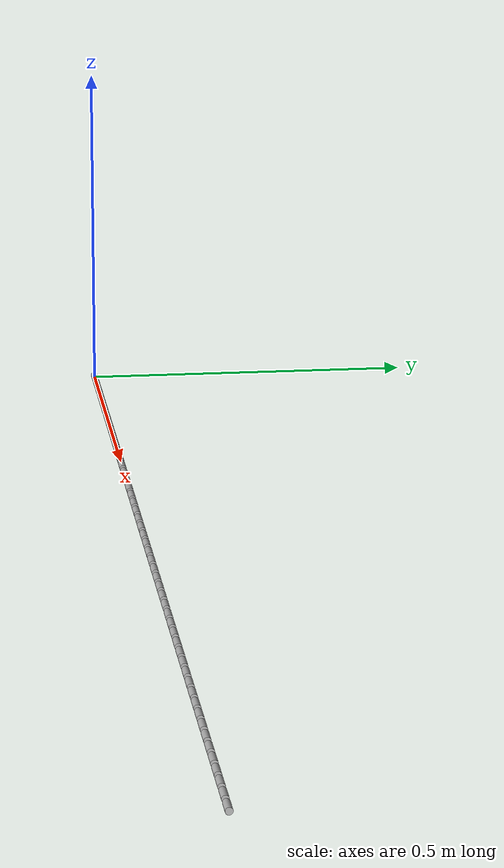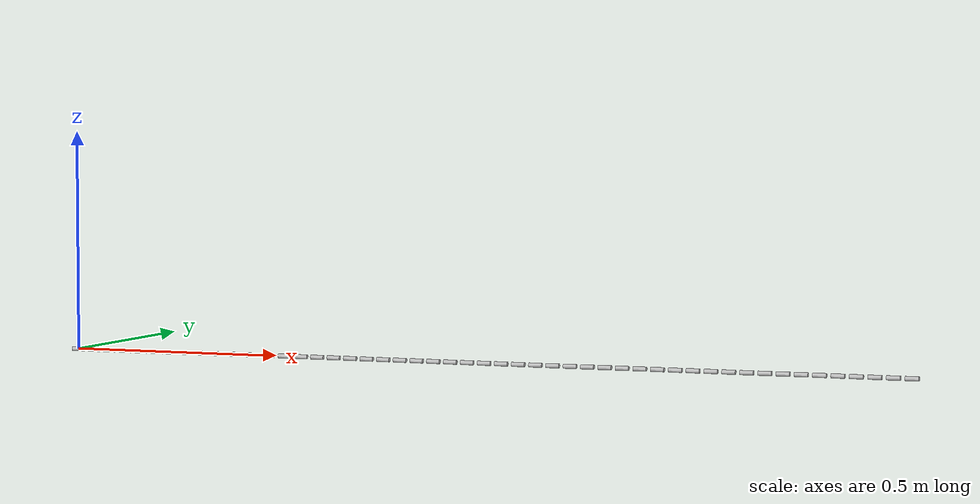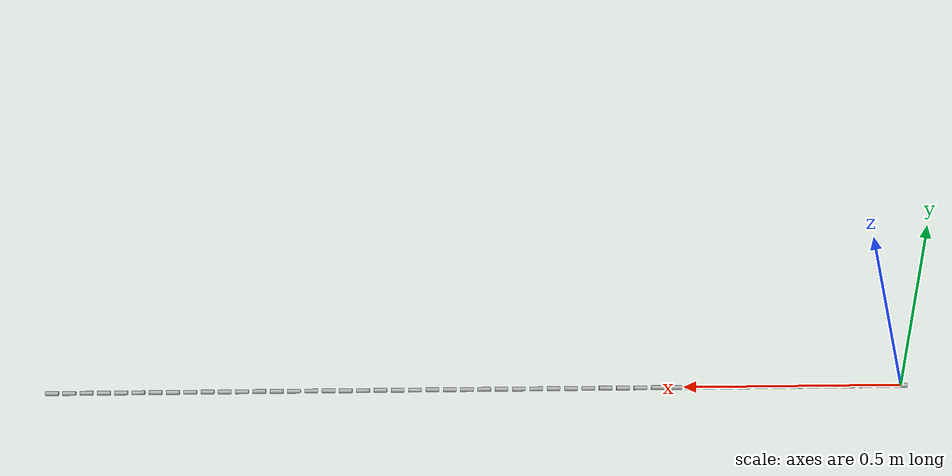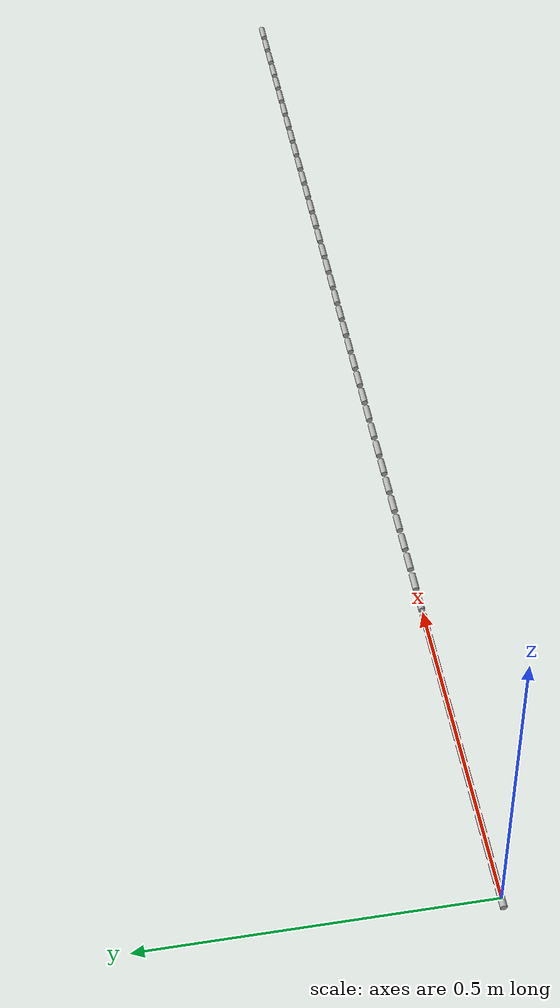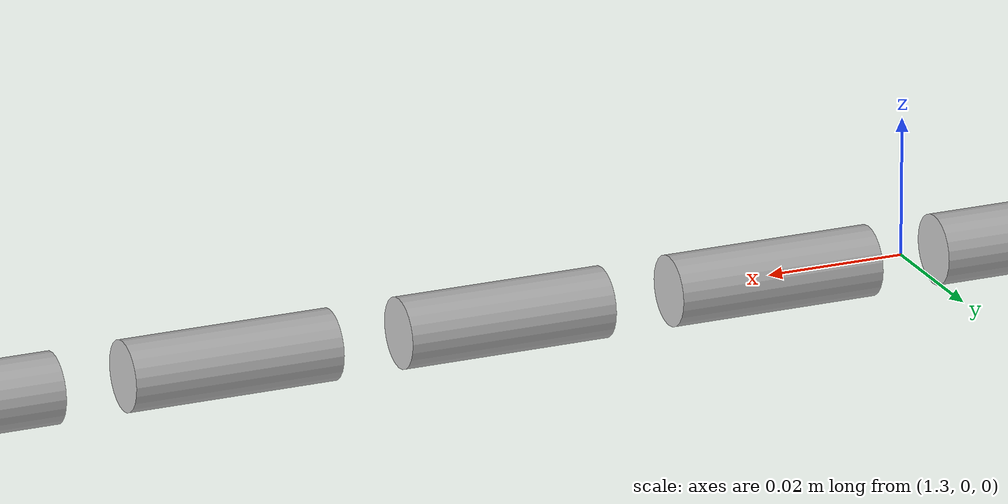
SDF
<?xml version='1.0'?>
 <sdf version='1.5'>
  <model name="tether_model">
   <static>false</static>

 				<!-- DEFINITION OF LINKS -->

    <link name='link_01'>
      <pose>0 0 0 0 1.57 0</pose>
      <inertial>
        <mass>0.001000</mass>
        <inertia>
          <ixx>0.000001</ixx>
          <ixy>0.000000</ixy>
          <ixz>0.000000</ixz>
          <iyy>0.000001</iyy>
          <iyz>0.000000</iyz>
          <izz>0.000001</izz>
        </inertia>
      </inertial>
      <collision name="collision">
        <geometry>
          <cylinder>
            <radius>0.005</radius>
            <length>0.03</length>
          </cylinder>
        </geometry>
      </collision>
      <visual name="visual">
        <geometry>
          <cylinder>
            <radius>0.005</radius>
            <length>0.03</length>
          </cylinder>
        </geometry>
      </visual>
    </link>
    <link name='link_02'>
      <pose>0.04 0 0 0 1.57 0</pose>
      <inertial>
        <mass>0.001000</mass>
        <inertia>
          <ixx>0.000001</ixx>
          <ixy>0.000000</ixy>
          <ixz>0.000000</ixz>
          <iyy>0.000001</iyy>
          <iyz>0.000000</iyz>
          <izz>0.000001</izz>
        </inertia>
      </inertial>
      <collision name="collision">
        <geometry>
          <cylinder>
            <radius>0.005</radius>
            <length>0.03</length>
          </cylinder>
        </geometry>
      </collision>
      <visual name="visual">
        <geometry>
          <cylinder>
            <radius>0.005</radius>
            <length>0.03</length>
          </cylinder>
        </geometry>
      </visual>
    </link>
    <link name='link_03'>
      <pose>0.08 0 0 0 1.57 0</pose>
      <inertial>
        <mass>0.001000</mass>
        <inertia>
          <ixx>0.000001</ixx>
          <ixy>0.000000</ixy>
          <ixz>0.000000</ixz>
          <iyy>0.000001</iyy>
          <iyz>0.000000</iyz>
          <izz>0.000001</izz>
        </inertia>
      </inertial>
      <collision name="collision">
        <geometry>
          <cylinder>
            <radius>0.005</radius>
            <length>0.03</length>
          </cylinder>
        </geometry>
      </collision>
      <visual name="visual">
        <geometry>
          <cylinder>
            <radius>0.005</radius>
            <length>0.03</length>
          </cylinder>
        </geometry>
      </visual>
    </link>
    <link name='link_04'>
      <pose>0.12 0 0 0 1.57 0</pose>
      <inertial>
        <mass>0.001000</mass>
        <inertia>
          <ixx>0.000001</ixx>
          <ixy>0.000000</ixy>
          <ixz>0.000000</ixz>
          <iyy>0.000001</iyy>
          <iyz>0.000000</iyz>
          <izz>0.000001</izz>
        </inertia>
      </inertial>
      <collision name="collision">
        <geometry>
          <cylinder>
            <radius>0.005</radius>
            <length>0.03</length>
          </cylinder>
        </geometry>
      </collision>
      <visual name="visual">
        <geometry>
          <cylinder>
            <radius>0.005</radius>
            <length>0.03</length>
          </cylinder>
        </geometry>
      </visual>
    </link>
    <link name='link_05'>
      <pose>0.16 0 0 0 1.57 0</pose>
      <inertial>
        <mass>0.001000</mass>
        <inertia>
          <ixx>0.000001</ixx>
          <ixy>0.000000</ixy>
          <ixz>0.000000</ixz>
          <iyy>0.000001</iyy>
          <iyz>0.000000</iyz>
          <izz>0.000001</izz>
        </inertia>
      </inertial>
      <collision name="collision">
        <geometry>
          <cylinder>
            <radius>0.005</radius>
            <length>0.03</length>
          </cylinder>
        </geometry>
      </collision>
      <visual name="visual">
        <geometry>
          <cylinder>
            <radius>0.005</radius>
            <length>0.03</length>
          </cylinder>
        </geometry>
      </visual>
    </link>
    <link name='link_06'>
      <pose>0.20 0 0 0 1.57 0</pose>
      <inertial>
        <mass>0.001000</mass>
        <inertia>
          <ixx>0.000001</ixx>
          <ixy>0.000000</ixy>
          <ixz>0.000000</ixz>
          <iyy>0.000001</iyy>
          <iyz>0.000000</iyz>
          <izz>0.000001</izz>
        </inertia>
      </inertial>
      <collision name="collision">
        <geometry>
          <cylinder>
            <radius>0.005</radius>
            <length>0.03</length>
          </cylinder>
        </geometry>
      </collision>
      <visual name="visual">
        <geometry>
          <cylinder>
            <radius>0.005</radius>
            <length>0.03</length>
          </cylinder>
        </geometry>
      </visual>
    </link>
    <link name='link_07'>
      <pose>0.24 0 0 0 1.57 0</pose>
      <inertial>
        <mass>0.001000</mass>
        <inertia>
          <ixx>0.000001</ixx>
          <ixy>0.000000</ixy>
          <ixz>0.000000</ixz>
          <iyy>0.000001</iyy>
          <iyz>0.000000</iyz>
          <izz>0.000001</izz>
        </inertia>
      </inertial>
      <collision name="collision">
        <geometry>
          <cylinder>
            <radius>0.005</radius>
            <length>0.03</length>
          </cylinder>
        </geometry>
      </collision>
      <visual name="visual">
        <geometry>
          <cylinder>
            <radius>0.005</radius>
            <length>0.03</length>
          </cylinder>
        </geometry>
      </visual>
    </link>
    <link name='link_08'>
      <pose>0.28 0 0 0 1.57 0</pose>
      <inertial>
        <mass>0.001000</mass>
        <inertia>
          <ixx>0.000001</ixx>
          <ixy>0.000000</ixy>
          <ixz>0.000000</ixz>
          <iyy>0.000001</iyy>
          <iyz>0.000000</iyz>
          <izz>0.000001</izz>
        </inertia>
      </inertial>
      <collision name="collision">
        <geometry>
          <cylinder>
            <radius>0.005</radius>
            <length>0.03</length>
          </cylinder>
        </geometry>
      </collision>
      <visual name="visual">
        <geometry>
          <cylinder>
            <radius>0.005</radius>
            <length>0.03</length>
          </cylinder>
        </geometry>
      </visual>
    </link>
    <link name='link_09'>
      <pose>0.32 0 0 0 1.57 0</pose>
      <inertial>
        <mass>0.001000</mass>
        <inertia>
          <ixx>0.000001</ixx>
          <ixy>0.000000</ixy>
          <ixz>0.000000</ixz>
          <iyy>0.000001</iyy>
          <iyz>0.000000</iyz>
          <izz>0.000001</izz>
        </inertia>
      </inertial>
      <collision name="collision">
        <geometry>
          <cylinder>
            <radius>0.005</radius>
            <length>0.03</length>
          </cylinder>
        </geometry>
      </collision>
      <visual name="visual">
        <geometry>
          <cylinder>
            <radius>0.005</radius>
            <length>0.03</length>
          </cylinder>
        </geometry>
      </visual>
    </link>
    <link name='link_10'>
      <pose>0.36 0 0 0 1.57 0</pose>
      <inertial>
        <mass>0.001000</mass>
        <inertia>
          <ixx>0.000001</ixx>
          <ixy>0.000000</ixy>
          <ixz>0.000000</ixz>
          <iyy>0.000001</iyy>
          <iyz>0.000000</iyz>
          <izz>0.000001</izz>
        </inertia>
      </inertial>
      <collision name="collision">
        <geometry>
          <cylinder>
            <radius>0.005</radius>
            <length>0.03</length>
          </cylinder>
        </geometry>
      </collision>
      <visual name="visual">
        <geometry>
          <cylinder>
            <radius>0.005</radius>
            <length>0.03</length>
          </cylinder>
        </geometry>
      </visual>
    </link>
    <link name='link_11'>
      <pose>0.40 0 0 0 1.57 0</pose>
      <inertial>
        <mass>0.001000</mass>
        <inertia>
          <ixx>0.000001</ixx>
          <ixy>0.000000</ixy>
          <ixz>0.000000</ixz>
          <iyy>0.000001</iyy>
          <iyz>0.000000</iyz>
          <izz>0.000001</izz>
        </inertia>
      </inertial>
      <collision name="collision">
        <geometry>
          <cylinder>
            <radius>0.005</radius>
            <length>0.03</length>
          </cylinder>
        </geometry>
      </collision>
      <visual name="visual">
        <geometry>
          <cylinder>
            <radius>0.005</radius>
            <length>0.03</length>
          </cylinder>
        </geometry>
      </visual>
    </link>
    <link name='link_12'>
      <pose>0.44 0 0 0 1.57 0</pose>
      <inertial>
        <mass>0.001000</mass>
        <inertia>
          <ixx>0.000001</ixx>
          <ixy>0.000000</ixy>
          <ixz>0.000000</ixz>
          <iyy>0.000001</iyy>
          <iyz>0.000000</iyz>
          <izz>0.000001</izz>
        </inertia>
      </inertial>
      <collision name="collision">
        <geometry>
          <cylinder>
            <radius>0.005</radius>
            <length>0.03</length>
          </cylinder>
        </geometry>
      </collision>
      <visual name="visual">
        <geometry>
          <cylinder>
            <radius>0.005</radius>
            <length>0.03</length>
          </cylinder>
        </geometry>
      </visual>
    </link>
    <link name='link_13'>
      <pose>0.48 0 0 0 1.57 0</pose>
      <inertial>
        <mass>0.001000</mass>
        <inertia>
          <ixx>0.000001</ixx>
          <ixy>0.000000</ixy>
          <ixz>0.000000</ixz>
          <iyy>0.000001</iyy>
          <iyz>0.000000</iyz>
          <izz>0.000001</izz>
        </inertia>
      </inertial>
      <collision name="collision">
        <geometry>
          <cylinder>
            <radius>0.005</radius>
            <length>0.03</length>
          </cylinder>
        </geometry>
      </collision>
      <visual name="visual">
        <geometry>
          <cylinder>
            <radius>0.005</radius>
            <length>0.03</length>
          </cylinder>
        </geometry>
      </visual>
    </link>
    <link name='link_14'>
      <pose>0.52 0 0 0 1.57 0</pose>
      <inertial>
        <mass>0.001000</mass>
        <inertia>
          <ixx>0.000001</ixx>
          <ixy>0.000000</ixy>
          <ixz>0.000000</ixz>
          <iyy>0.000001</iyy>
          <iyz>0.000000</iyz>
          <izz>0.000001</izz>
        </inertia>
      </inertial>
      <collision name="collision">
        <geometry>
          <cylinder>
            <radius>0.005</radius>
            <length>0.03</length>
          </cylinder>
        </geometry>
      </collision>
      <visual name="visual">
        <geometry>
          <cylinder>
            <radius>0.005</radius>
            <length>0.03</length>
          </cylinder>
        </geometry>
      </visual>
    </link>
    <link name='link_15'>
      <pose>0.56 0 0 0 1.57 0</pose>
      <inertial>
        <mass>0.001000</mass>
        <inertia>
          <ixx>0.000001</ixx>
          <ixy>0.000000</ixy>
          <ixz>0.000000</ixz>
          <iyy>0.000001</iyy>
          <iyz>0.000000</iyz>
          <izz>0.000001</izz>
        </inertia>
      </inertial>
      <collision name="collision">
        <geometry>
          <cylinder>
            <radius>0.005</radius>
            <length>0.03</length>
          </cylinder>
        </geometry>
      </collision>
      <visual name="visual">
        <geometry>
          <cylinder>
            <radius>0.005</radius>
            <length>0.03</length>
          </cylinder>
        </geometry>
      </visual>
    </link>
    <link name='link_16'>
      <pose>0.60 0 0 0 1.57 0</pose>
      <inertial>
        <mass>0.001000</mass>
        <inertia>
          <ixx>0.000001</ixx>
          <ixy>0.000000</ixy>
          <ixz>0.000000</ixz>
          <iyy>0.000001</iyy>
          <iyz>0.000000</iyz>
          <izz>0.000001</izz>
        </inertia>
      </inertial>
      <collision name="collision">
        <geometry>
          <cylinder>
            <radius>0.005</radius>
            <length>0.03</length>
          </cylinder>
        </geometry>
      </collision>
      <visual name="visual">
        <geometry>
          <cylinder>
            <radius>0.005</radius>
            <length>0.03</length>
          </cylinder>
        </geometry>
      </visual>
    </link>
    <link name='link_17'>
      <pose>0.64 0 0 0 1.57 0</pose>
      <inertial>
        <mass>0.001000</mass>
        <inertia>
          <ixx>0.000001</ixx>
          <ixy>0.000000</ixy>
          <ixz>0.000000</ixz>
          <iyy>0.000001</iyy>
          <iyz>0.000000</iyz>
          <izz>0.000001</izz>
        </inertia>
      </inertial>
      <collision name="collision">
        <geometry>
          <cylinder>
            <radius>0.005</radius>
            <length>0.03</length>
          </cylinder>
        </geometry>
      </collision>
      <visual name="visual">
        <geometry>
          <cylinder>
            <radius>0.005</radius>
            <length>0.03</length>
          </cylinder>
        </geometry>
      </visual>
    </link>
    <link name='link_18'>
      <pose>0.68 0 0 0 1.57 0</pose>
      <inertial>
        <mass>0.001000</mass>
        <inertia>
          <ixx>0.000001</ixx>
          <ixy>0.000000</ixy>
          <ixz>0.000000</ixz>
          <iyy>0.000001</iyy>
          <iyz>0.000000</iyz>
          <izz>0.000001</izz>
        </inertia>
      </inertial>
      <collision name="collision">
        <geometry>
          <cylinder>
            <radius>0.005</radius>
            <length>0.03</length>
          </cylinder>
        </geometry>
      </collision>
      <visual name="visual">
        <geometry>
          <cylinder>
            <radius>0.005</radius>
            <length>0.03</length>
          </cylinder>
        </geometry>
      </visual>
    </link>
    <link name='link_19'>
      <pose>0.72 0 0 0 1.57 0</pose>
      <inertial>
        <mass>0.001000</mass>
        <inertia>
          <ixx>0.000001</ixx>
          <ixy>0.000000</ixy>
          <ixz>0.000000</ixz>
          <iyy>0.000001</iyy>
          <iyz>0.000000</iyz>
          <izz>0.000001</izz>
        </inertia>
      </inertial>
      <collision name="collision">
        <geometry>
          <cylinder>
            <radius>0.005</radius>
            <length>0.03</length>
          </cylinder>
        </geometry>
      </collision>
      <visual name="visual">
        <geometry>
          <cylinder>
            <radius>0.005</radius>
            <length>0.03</length>
          </cylinder>
        </geometry>
      </visual>
    </link>
    <link name='link_20'>
      <pose>0.76 0 0 0 1.57 0</pose>
      <inertial>
        <mass>0.001000</mass>
        <inertia>
          <ixx>0.000001</ixx>
          <ixy>0.000000</ixy>
          <ixz>0.000000</ixz>
          <iyy>0.000001</iyy>
          <iyz>0.000000</iyz>
          <izz>0.000001</izz>
        </inertia>
      </inertial>
      <collision name="collision">
        <geometry>
          <cylinder>
            <radius>0.005</radius>
            <length>0.03</length>
          </cylinder>
        </geometry>
      </collision>
      <visual name="visual">
        <geometry>
          <cylinder>
            <radius>0.005</radius>
            <length>0.03</length>
          </cylinder>
        </geometry>
      </visual>
    </link>
    <link name='link_21'>
      <pose>0.80 0 0 0 1.57 0</pose>
      <inertial>
        <mass>0.001000</mass>
        <inertia>
          <ixx>0.000001</ixx>
          <ixy>0.000000</ixy>
          <ixz>0.000000</ixz>
          <iyy>0.000001</iyy>
          <iyz>0.000000</iyz>
          <izz>0.000001</izz>
        </inertia>
      </inertial>
      <collision name="collision">
        <geometry>
          <cylinder>
            <radius>0.005</radius>
            <length>0.03</length>
          </cylinder>
        </geometry>
      </collision>
      <visual name="visual">
        <geometry>
          <cylinder>
            <radius>0.005</radius>
            <length>0.03</length>
          </cylinder>
        </geometry>
      </visual>
    </link>
    <link name='link_22'>
      <pose>0.84 0 0 0 1.57 0</pose>
      <inertial>
        <mass>0.001000</mass>
        <inertia>
          <ixx>0.000001</ixx>
          <ixy>0.000000</ixy>
          <ixz>0.000000</ixz>
          <iyy>0.000001</iyy>
          <iyz>0.000000</iyz>
          <izz>0.000001</izz>
        </inertia>
      </inertial>
      <collision name="collision">
        <geometry>
          <cylinder>
            <radius>0.005</radius>
            <length>0.03</length>
          </cylinder>
        </geometry>
      </collision>
      <visual name="visual">
        <geometry>
          <cylinder>
            <radius>0.005</radius>
            <length>0.03</length>
          </cylinder>
        </geometry>
      </visual>
    </link>
    <link name='link_23'>
      <pose>0.88 0 0 0 1.57 0</pose>
      <inertial>
        <mass>0.001000</mass>
        <inertia>
          <ixx>0.000001</ixx>
          <ixy>0.000000</ixy>
          <ixz>0.000000</ixz>
          <iyy>0.000001</iyy>
          <iyz>0.000000</iyz>
          <izz>0.000001</izz>
        </inertia>
      </inertial>
      <collision name="collision">
        <geometry>
          <cylinder>
            <radius>0.005</radius>
            <length>0.03</length>
          </cylinder>
        </geometry>
      </collision>
      <visual name="visual">
        <geometry>
          <cylinder>
            <radius>0.005</radius>
            <length>0.03</length>
          </cylinder>
        </geometry>
      </visual>
    </link>
    <link name='link_24'>
      <pose>0.92 0 0 0 1.57 0</pose>
      <inertial>
        <mass>0.001000</mass>
        <inertia>
          <ixx>0.000001</ixx>
          <ixy>0.000000</ixy>
          <ixz>0.000000</ixz>
          <iyy>0.000001</iyy>
          <iyz>0.000000</iyz>
          <izz>0.000001</izz>
        </inertia>
      </inertial>
      <collision name="collision">
        <geometry>
          <cylinder>
            <radius>0.005</radius>
            <length>0.03</length>
          </cylinder>
        </geometry>
      </collision>
      <visual name="visual">
        <geometry>
          <cylinder>
            <radius>0.005</radius>
            <length>0.03</length>
          </cylinder>
        </geometry>
      </visual>
    </link>
    <link name='link_25'>
      <pose>0.96 0 0 0 1.57 0</pose>
      <inertial>
        <mass>0.001000</mass>
        <inertia>
          <ixx>0.000001</ixx>
          <ixy>0.000000</ixy>
          <ixz>0.000000</ixz>
          <iyy>0.000001</iyy>
          <iyz>0.000000</iyz>
          <izz>0.000001</izz>
        </inertia>
      </inertial>
      <collision name="collision">
        <geometry>
          <cylinder>
            <radius>0.005</radius>
            <length>0.03</length>
          </cylinder>
        </geometry>
      </collision>
      <visual name="visual">
        <geometry>
          <cylinder>
            <radius>0.005</radius>
            <length>0.03</length>
          </cylinder>
        </geometry>
      </visual>
    </link>
    <link name='link_26'>
      <pose>1.00 0 0 0 1.57 0</pose>
      <inertial>
        <mass>0.001000</mass>
        <inertia>
          <ixx>0.000001</ixx>
          <ixy>0.000000</ixy>
          <ixz>0.000000</ixz>
          <iyy>0.000001</iyy>
          <iyz>0.000000</iyz>
          <izz>0.000001</izz>
        </inertia>
      </inertial>
      <collision name="collision">
        <geometry>
          <cylinder>
            <radius>0.005</radius>
            <length>0.03</length>
          </cylinder>
        </geometry>
      </collision>
      <visual name="visual">
        <geometry>
          <cylinder>
            <radius>0.005</radius>
            <length>0.03</length>
          </cylinder>
        </geometry>
      </visual>
    </link>
    <link name='link_27'>
      <pose>1.04 0 0 0 1.57 0</pose>
      <inertial>
        <mass>0.001000</mass>
        <inertia>
          <ixx>0.000001</ixx>
          <ixy>0.000000</ixy>
          <ixz>0.000000</ixz>
          <iyy>0.000001</iyy>
          <iyz>0.000000</iyz>
          <izz>0.000001</izz>
        </inertia>
      </inertial>
      <collision name="collision">
        <geometry>
          <cylinder>
            <radius>0.005</radius>
            <length>0.03</length>
          </cylinder>
        </geometry>
      </collision>
      <visual name="visual">
        <geometry>
          <cylinder>
            <radius>0.005</radius>
            <length>0.03</length>
          </cylinder>
        </geometry>
      </visual>
    </link>
    <link name='link_28'>
      <pose>1.08 0 0 0 1.57 0</pose>
      <inertial>
        <mass>0.001000</mass>
        <inertia>
          <ixx>0.000001</ixx>
          <ixy>0.000000</ixy>
          <ixz>0.000000</ixz>
          <iyy>0.000001</iyy>
          <iyz>0.000000</iyz>
          <izz>0.000001</izz>
        </inertia>
      </inertial>
      <collision name="collision">
        <geometry>
          <cylinder>
            <radius>0.005</radius>
            <length>0.03</length>
          </cylinder>
        </geometry>
      </collision>
      <visual name="visual">
        <geometry>
          <cylinder>
            <radius>0.005</radius>
            <length>0.03</length>
          </cylinder>
        </geometry>
      </visual>
    </link>
    <link name='link_29'>
      <pose>1.12 0 0 0 1.57 0</pose>
      <inertial>
        <mass>0.001000</mass>
        <inertia>
          <ixx>0.000001</ixx>
          <ixy>0.000000</ixy>
          <ixz>0.000000</ixz>
          <iyy>0.000001</iyy>
          <iyz>0.000000</iyz>
          <izz>0.000001</izz>
        </inertia>
      </inertial>
      <collision name="collision">
        <geometry>
          <cylinder>
            <radius>0.005</radius>
            <length>0.03</length>
          </cylinder>
        </geometry>
      </collision>
      <visual name="visual">
        <geometry>
          <cylinder>
            <radius>0.005</radius>
            <length>0.03</length>
          </cylinder>
        </geometry>
      </visual>
    </link>
    <link name='link_30'>
      <pose>1.16 0 0 0 1.57 0</pose>
      <inertial>
        <mass>0.001000</mass>
        <inertia>
          <ixx>0.000001</ixx>
          <ixy>0.000000</ixy>
          <ixz>0.000000</ixz>
          <iyy>0.000001</iyy>
          <iyz>0.000000</iyz>
          <izz>0.000001</izz>
        </inertia>
      </inertial>
      <collision name="collision">
        <geometry>
          <cylinder>
            <radius>0.005</radius>
            <length>0.03</length>
          </cylinder>
        </geometry>
      </collision>
      <visual name="visual">
        <geometry>
          <cylinder>
            <radius>0.005</radius>
            <length>0.03</length>
          </cylinder>
        </geometry>
      </visual>
    </link>
    <link name='link_31'>
      <pose>1.20 0 0 0 1.57 0</pose>
      <inertial>
        <mass>0.001000</mass>
        <inertia>
          <ixx>0.000001</ixx>
          <ixy>0.000000</ixy>
          <ixz>0.000000</ixz>
          <iyy>0.000001</iyy>
          <iyz>0.000000</iyz>
          <izz>0.000001</izz>
        </inertia>
      </inertial>
      <collision name="collision">
        <geometry>
          <cylinder>
            <radius>0.005</radius>
            <length>0.03</length>
          </cylinder>
        </geometry>
      </collision>
      <visual name="visual">
        <geometry>
          <cylinder>
            <radius>0.005</radius>
            <length>0.03</length>
          </cylinder>
        </geometry>
      </visual>
    </link>
    <link name='link_32'>
      <pose>1.24 0 0 0 1.57 0</pose>
      <inertial>
        <mass>0.001000</mass>
        <inertia>
          <ixx>0.000001</ixx>
          <ixy>0.000000</ixy>
          <ixz>0.000000</ixz>
          <iyy>0.000001</iyy>
          <iyz>0.000000</iyz>
          <izz>0.000001</izz>
        </inertia>
      </inertial>
      <collision name="collision">
        <geometry>
          <cylinder>
            <radius>0.005</radius>
            <length>0.03</length>
          </cylinder>
        </geometry>
      </collision>
      <visual name="visual">
        <geometry>
          <cylinder>
            <radius>0.005</radius>
            <length>0.03</length>
          </cylinder>
        </geometry>
      </visual>
    </link>
    <link name='link_33'>
      <pose>1.28 0 0 0 1.57 0</pose>
      <inertial>
        <mass>0.001000</mass>
        <inertia>
          <ixx>0.000001</ixx>
          <ixy>0.000000</ixy>
          <ixz>0.000000</ixz>
          <iyy>0.000001</iyy>
          <iyz>0.000000</iyz>
          <izz>0.000001</izz>
        </inertia>
      </inertial>
      <collision name="collision">
        <geometry>
          <cylinder>
            <radius>0.005</radius>
            <length>0.03</length>
          </cylinder>
        </geometry>
      </collision>
      <visual name="visual">
        <geometry>
          <cylinder>
            <radius>0.005</radius>
            <length>0.03</length>
          </cylinder>
        </geometry>
      </visual>
    </link>
    <link name='link_34'>
      <pose>1.32 0 0 0 1.57 0</pose>
      <inertial>
        <mass>0.001000</mass>
        <inertia>
          <ixx>0.000001</ixx>
          <ixy>0.000000</ixy>
          <ixz>0.000000</ixz>
          <iyy>0.000001</iyy>
          <iyz>0.000000</iyz>
          <izz>0.000001</izz>
        </inertia>
      </inertial>
      <collision name="collision">
        <geometry>
          <cylinder>
            <radius>0.005</radius>
            <length>0.03</length>
          </cylinder>
        </geometry>
      </collision>
      <visual name="visual">
        <geometry>
          <cylinder>
            <radius>0.005</radius>
            <length>0.03</length>
          </cylinder>
        </geometry>
      </visual>
    </link>
    <link name='link_35'>
      <pose>1.36 0 0 0 1.57 0</pose>
      <inertial>
        <mass>0.001000</mass>
        <inertia>
          <ixx>0.000001</ixx>
          <ixy>0.000000</ixy>
          <ixz>0.000000</ixz>
          <iyy>0.000001</iyy>
          <iyz>0.000000</iyz>
          <izz>0.000001</izz>
        </inertia>
      </inertial>
      <collision name="collision">
        <geometry>
          <cylinder>
            <radius>0.005</radius>
            <length>0.03</length>
          </cylinder>
        </geometry>
      </collision>
      <visual name="visual">
        <geometry>
          <cylinder>
            <radius>0.005</radius>
            <length>0.03</length>
          </cylinder>
        </geometry>
      </visual>
    </link>
    <link name='link_36'>
      <pose>1.40 0 0 0 1.57 0</pose>
      <inertial>
        <mass>0.001000</mass>
        <inertia>
          <ixx>0.000001</ixx>
          <ixy>0.000000</ixy>
          <ixz>0.000000</ixz>
          <iyy>0.000001</iyy>
          <iyz>0.000000</iyz>
          <izz>0.000001</izz>
        </inertia>
      </inertial>
      <collision name="collision">
        <geometry>
          <cylinder>
            <radius>0.005</radius>
            <length>0.03</length>
          </cylinder>
        </geometry>
      </collision>
      <visual name="visual">
        <geometry>
          <cylinder>
            <radius>0.005</radius>
            <length>0.03</length>
          </cylinder>
        </geometry>
      </visual>
    </link>
    <link name='link_37'>
      <pose>1.44 0 0 0 1.57 0</pose>
      <inertial>
        <mass>0.001000</mass>
        <inertia>
          <ixx>0.000001</ixx>
          <ixy>0.000000</ixy>
          <ixz>0.000000</ixz>
          <iyy>0.000001</iyy>
          <iyz>0.000000</iyz>
          <izz>0.000001</izz>
        </inertia>
      </inertial>
      <collision name="collision">
        <geometry>
          <cylinder>
            <radius>0.005</radius>
            <length>0.03</length>
          </cylinder>
        </geometry>
      </collision>
      <visual name="visual">
        <geometry>
          <cylinder>
            <radius>0.005</radius>
            <length>0.03</length>
          </cylinder>
        </geometry>
      </visual>
    </link>
    <link name='link_38'>
      <pose>1.48 0 0 0 1.57 0</pose>
      <inertial>
        <mass>0.001000</mass>
        <inertia>
          <ixx>0.000001</ixx>
          <ixy>0.000000</ixy>
          <ixz>0.000000</ixz>
          <iyy>0.000001</iyy>
          <iyz>0.000000</iyz>
          <izz>0.000001</izz>
        </inertia>
      </inertial>
      <collision name="collision">
        <geometry>
          <cylinder>
            <radius>0.005</radius>
            <length>0.03</length>
          </cylinder>
        </geometry>
      </collision>
      <visual name="visual">
        <geometry>
          <cylinder>
            <radius>0.005</radius>
            <length>0.03</length>
          </cylinder>
        </geometry>
      </visual>
    </link>
    <link name='link_39'>
      <pose>1.52 0 0 0 1.57 0</pose>
      <inertial>
        <mass>0.001000</mass>
        <inertia>
          <ixx>0.000001</ixx>
          <ixy>0.000000</ixy>
          <ixz>0.000000</ixz>
          <iyy>0.000001</iyy>
          <iyz>0.000000</iyz>
          <izz>0.000001</izz>
        </inertia>
      </inertial>
      <collision name="collision">
        <geometry>
          <cylinder>
            <radius>0.005</radius>
            <length>0.03</length>
          </cylinder>
        </geometry>
      </collision>
      <visual name="visual">
        <geometry>
          <cylinder>
            <radius>0.005</radius>
            <length>0.03</length>
          </cylinder>
        </geometry>
      </visual>
    </link>
    <link name='link_40'>
      <pose>1.56 0 0 0 1.57 0</pose>
      <inertial>
        <mass>0.001000</mass>
        <inertia>
          <ixx>0.000001</ixx>
          <ixy>0.000000</ixy>
          <ixz>0.000000</ixz>
          <iyy>0.000001</iyy>
          <iyz>0.000000</iyz>
          <izz>0.000001</izz>
        </inertia>
      </inertial>
      <collision name="collision">
        <geometry>
          <cylinder>
            <radius>0.005</radius>
            <length>0.03</length>
          </cylinder>
        </geometry>
      </collision>
      <visual name="visual">
        <geometry>
          <cylinder>
            <radius>0.005</radius>
            <length>0.03</length>
          </cylinder>
        </geometry>
      </visual>
    </link>
    <link name='link_41'>
      <pose>1.60 0 0 0 1.57 0</pose>
      <inertial>
        <mass>0.001000</mass>
        <inertia>
          <ixx>0.000001</ixx>
          <ixy>0.000000</ixy>
          <ixz>0.000000</ixz>
          <iyy>0.000001</iyy>
          <iyz>0.000000</iyz>
          <izz>0.000001</izz>
        </inertia>
      </inertial>
      <collision name="collision">
        <geometry>
          <cylinder>
            <radius>0.005</radius>
            <length>0.03</length>
          </cylinder>
        </geometry>
      </collision>
      <visual name="visual">
        <geometry>
          <cylinder>
            <radius>0.005</radius>
            <length>0.03</length>
          </cylinder>
        </geometry>
      </visual>
    </link>
    <link name='link_42'>
      <pose>1.64 0 0 0 1.57 0</pose>
      <inertial>
        <mass>0.001000</mass>
        <inertia>
          <ixx>0.000001</ixx>
          <ixy>0.000000</ixy>
          <ixz>0.000000</ixz>
          <iyy>0.000001</iyy>
          <iyz>0.000000</iyz>
          <izz>0.000001</izz>
        </inertia>
      </inertial>
      <collision name="collision">
        <geometry>
          <cylinder>
            <radius>0.005</radius>
            <length>0.03</length>
          </cylinder>
        </geometry>
      </collision>
      <visual name="visual">
        <geometry>
          <cylinder>
            <radius>0.005</radius>
            <length>0.03</length>
          </cylinder>
        </geometry>
      </visual>
    </link>
    <link name='link_43'>
      <pose>1.68 0 0 0 1.57 0</pose>
      <inertial>
        <mass>0.001000</mass>
        <inertia>
          <ixx>0.000001</ixx>
          <ixy>0.000000</ixy>
          <ixz>0.000000</ixz>
          <iyy>0.000001</iyy>
          <iyz>0.000000</iyz>
          <izz>0.000001</izz>
        </inertia>
      </inertial>
      <collision name="collision">
        <geometry>
          <cylinder>
            <radius>0.005</radius>
            <length>0.03</length>
          </cylinder>
        </geometry>
      </collision>
      <visual name="visual">
        <geometry>
          <cylinder>
            <radius>0.005</radius>
            <length>0.03</length>
          </cylinder>
        </geometry>
      </visual>
    </link>
    <link name='link_44'>
      <pose>1.72 0 0 0 1.57 0</pose>
      <inertial>
        <mass>0.001000</mass>
        <inertia>
          <ixx>0.000001</ixx>
          <ixy>0.000000</ixy>
          <ixz>0.000000</ixz>
          <iyy>0.000001</iyy>
          <iyz>0.000000</iyz>
          <izz>0.000001</izz>
        </inertia>
      </inertial>
      <collision name="collision">
        <geometry>
          <cylinder>
            <radius>0.005</radius>
            <length>0.03</length>
          </cylinder>
        </geometry>
      </collision>
      <visual name="visual">
        <geometry>
          <cylinder>
            <radius>0.005</radius>
            <length>0.03</length>
          </cylinder>
        </geometry>
      </visual>
    </link>
    <link name='link_45'>
      <pose>1.76 0 0 0 1.57 0</pose>
      <inertial>
        <mass>0.001000</mass>
        <inertia>
          <ixx>0.000001</ixx>
          <ixy>0.000000</ixy>
          <ixz>0.000000</ixz>
          <iyy>0.000001</iyy>
          <iyz>0.000000</iyz>
          <izz>0.000001</izz>
        </inertia>
      </inertial>
      <collision name="collision">
        <geometry>
          <cylinder>
            <radius>0.005</radius>
            <length>0.03</length>
          </cylinder>
        </geometry>
      </collision>
      <visual name="visual">
        <geometry>
          <cylinder>
            <radius>0.005</radius>
            <length>0.03</length>
          </cylinder>
        </geometry>
      </visual>
    </link>
    <link name='link_46'>
      <pose>1.80 0 0 0 1.57 0</pose>
      <inertial>
        <mass>0.001000</mass>
        <inertia>
          <ixx>0.000001</ixx>
          <ixy>0.000000</ixy>
          <ixz>0.000000</ixz>
          <iyy>0.000001</iyy>
          <iyz>0.000000</iyz>
          <izz>0.000001</izz>
        </inertia>
      </inertial>
      <collision name="collision">
        <geometry>
          <cylinder>
            <radius>0.005</radius>
            <length>0.03</length>
          </cylinder>
        </geometry>
      </collision>
      <visual name="visual">
        <geometry>
          <cylinder>
            <radius>0.005</radius>
            <length>0.03</length>
          </cylinder>
        </geometry>
      </visual>
    </link>
    <link name='link_47'>
      <pose>1.84 0 0 0 1.57 0</pose>
      <inertial>
        <mass>0.001000</mass>
        <inertia>
          <ixx>0.000001</ixx>
          <ixy>0.000000</ixy>
          <ixz>0.000000</ixz>
          <iyy>0.000001</iyy>
          <iyz>0.000000</iyz>
          <izz>0.000001</izz>
        </inertia>
      </inertial>
      <collision name="collision">
        <geometry>
          <cylinder>
            <radius>0.005</radius>
            <length>0.03</length>
          </cylinder>
        </geometry>
      </collision>
      <visual name="visual">
        <geometry>
          <cylinder>
            <radius>0.005</radius>
            <length>0.03</length>
          </cylinder>
        </geometry>
      </visual>
    </link>
    <link name='link_48'>
      <pose>1.88 0 0 0 1.57 0</pose>
      <inertial>
        <mass>0.001000</mass>
        <inertia>
          <ixx>0.000001</ixx>
          <ixy>0.000000</ixy>
          <ixz>0.000000</ixz>
          <iyy>0.000001</iyy>
          <iyz>0.000000</iyz>
          <izz>0.000001</izz>
        </inertia>
      </inertial>
      <collision name="collision">
        <geometry>
          <cylinder>
            <radius>0.005</radius>
            <length>0.03</length>
          </cylinder>
        </geometry>
      </collision>
      <visual name="visual">
        <geometry>
          <cylinder>
            <radius>0.005</radius>
            <length>0.03</length>
          </cylinder>
        </geometry>
      </visual>
    </link>
    <link name='link_49'>
      <pose>1.92 0 0 0 1.57 0</pose>
      <inertial>
        <mass>0.001000</mass>
        <inertia>
          <ixx>0.000001</ixx>
          <ixy>0.000000</ixy>
          <ixz>0.000000</ixz>
          <iyy>0.000001</iyy>
          <iyz>0.000000</iyz>
          <izz>0.000001</izz>
        </inertia>
      </inertial>
      <collision name="collision">
        <geometry>
          <cylinder>
            <radius>0.005</radius>
            <length>0.03</length>
          </cylinder>
        </geometry>
      </collision>
      <visual name="visual">
        <geometry>
          <cylinder>
            <radius>0.005</radius>
            <length>0.03</length>
          </cylinder>
        </geometry>
      </visual>
    </link>
    <link name='link_50'>
      <pose>1.96 0 0 0 1.57 0</pose>
      <inertial>
        <mass>0.001000</mass>
        <inertia>
          <ixx>0.000001</ixx>
          <ixy>0.000000</ixy>
          <ixz>0.000000</ixz>
          <iyy>0.000001</iyy>
          <iyz>0.000000</iyz>
          <izz>0.000001</izz>
        </inertia>
      </inertial>
      <collision name="collision">
        <geometry>
          <cylinder>
            <radius>0.005</radius>
            <length>0.03</length>
          </cylinder>
        </geometry>
      </collision>
      <visual name="visual">
        <geometry>
          <cylinder>
            <radius>0.005</radius>
            <length>0.03</length>
          </cylinder>
        </geometry>
      </visual>
    </link>

    <joint name="joint_01_02" type="revolute">
      <pose>-0.02 0 0 0 0 0</pose>
      <child>link_02</child>
      <parent>link_01</parent>
      <axis>
        <xyz>1.000000 0.000000 0.000000</xyz>
        <limit>
          <lower>-3.000000</lower>
          <upper>3.000000</upper>
        </limit>
        <dynamics>
          <damping>1.000000</damping>
        </dynamics>
      </axis>
    </joint>
    <joint name="joint_02_03" type="revolute">
      <pose>-0.02 0 0 0 0 0</pose>
      <child>link_03</child>
      <parent>link_02</parent>
      <axis>
        <xyz>0.000000 1.000000 0.000000</xyz>
        <limit>
          <lower>-3.000000</lower>
          <upper>3.000000</upper>
        </limit>
        <dynamics>
          <damping>1.000000</damping>
        </dynamics>
      </axis>
    </joint>
    <joint name="joint_03_04" type="revolute">
      <pose>-0.02 0 0 0 0 0</pose>
      <child>link_04</child>
      <parent>link_03</parent>
      <axis>
        <xyz>1.000000 0.000000 0.000000</xyz>
        <limit>
          <lower>-3.000000</lower>
          <upper>3.000000</upper>
        </limit>
        <dynamics>
          <damping>1.000000</damping>
        </dynamics>
      </axis>
    </joint>
    <joint name="joint_04_05" type="revolute">
      <pose>-0.02 0 0 0 0 0</pose>
      <child>link_05</child>
      <parent>link_04</parent>
      <axis>
        <xyz>0.000000 1.000000 0.000000</xyz>
        <limit>
          <lower>-3.000000</lower>
          <upper>3.000000</upper>
        </limit>
        <dynamics>
          <damping>1.000000</damping>
        </dynamics>
      </axis>
    </joint>
    <joint name="joint_05_06" type="revolute">
      <pose>-0.02 0 0 0 0 0</pose>
      <child>link_06</child>
      <parent>link_05</parent>
      <axis>
        <xyz>1.000000 0.000000 0.000000</xyz>
        <limit>
          <lower>-3.000000</lower>
          <upper>3.000000</upper>
        </limit>
        <dynamics>
          <damping>1.000000</damping>
        </dynamics>
      </axis>
    </joint>
    <joint name="joint_06_07" type="revolute">
      <pose>-0.02 0 0 0 0 0</pose>
      <child>link_07</child>
      <parent>link_06</parent>
      <axis>
        <xyz>0.000000 1.000000 0.000000</xyz>
        <limit>
          <lower>-3.000000</lower>
          <upper>3.000000</upper>
        </limit>
        <dynamics>
          <damping>1.000000</damping>
        </dynamics>
      </axis>
    </joint>
    <joint name="joint_07_08" type="revolute">
      <pose>-0.02 0 0 0 0 0</pose>
      <child>link_08</child>
      <parent>link_07</parent>
      <axis>
        <xyz>1.000000 0.000000 0.000000</xyz>
        <limit>
          <lower>-3.000000</lower>
          <upper>3.000000</upper>
        </limit>
        <dynamics>
          <damping>1.000000</damping>
        </dynamics>
      </axis>
    </joint>
    <joint name="joint_08_09" type="revolute">
      <pose>-0.02 0 0 0 0 0</pose>
      <child>link_09</child>
      <parent>link_08</parent>
      <axis>
        <xyz>0.000000 1.000000 0.000000</xyz>
        <limit>
          <lower>-3.000000</lower>
          <upper>3.000000</upper>
        </limit>
        <dynamics>
          <damping>1.000000</damping>
        </dynamics>
      </axis>
    </joint>
    <joint name="joint_09_10" type="revolute">
      <pose>-0.02 0 0 0 0 0</pose>
      <child>link_10</child>
      <parent>link_09</parent>
      <axis>
        <xyz>1.000000 0.000000 0.000000</xyz>
        <limit>
          <lower>-3.000000</lower>
          <upper>3.000000</upper>
        </limit>
        <dynamics>
          <damping>1.000000</damping>
        </dynamics>
      </axis>
    </joint>
    <joint name="joint_10_11" type="revolute">
      <pose>-0.02 0 0 0 0 0</pose>
      <child>link_11</child>
      <parent>link_10</parent>
      <axis>
        <xyz>0.000000 1.000000 0.000000</xyz>
        <limit>
          <lower>-3.000000</lower>
          <upper>3.000000</upper>
        </limit>
        <dynamics>
          <damping>1.000000</damping>
        </dynamics>
      </axis>
    </joint>
    <joint name="joint_11_12" type="revolute">
      <pose>-0.02 0 0 0 0 0</pose>
      <child>link_12</child>
      <parent>link_11</parent>
      <axis>
        <xyz>1.000000 0.000000 0.000000</xyz>
        <limit>
          <lower>-3.000000</lower>
          <upper>3.000000</upper>
        </limit>
        <dynamics>
          <damping>1.000000</damping>
        </dynamics>
      </axis>
    </joint>
    <joint name="joint_12_13" type="revolute">
      <pose>-0.02 0 0 0 0 0</pose>
      <child>link_13</child>
      <parent>link_12</parent>
      <axis>
        <xyz>0.000000 1.000000 0.000000</xyz>
        <limit>
          <lower>-3.000000</lower>
          <upper>3.000000</upper>
        </limit>
        <dynamics>
          <damping>1.000000</damping>
        </dynamics>
      </axis>
    </joint>
    <joint name="joint_13_14" type="revolute">
      <pose>-0.02 0 0 0 0 0</pose>
      <child>link_14</child>
      <parent>link_13</parent>
      <axis>
        <xyz>1.000000 0.000000 0.000000</xyz>
        <limit>
          <lower>-3.000000</lower>
          <upper>3.000000</upper>
        </limit>
        <dynamics>
          <damping>1.000000</damping>
        </dynamics>
      </axis>
    </joint>
    <joint name="joint_14_15" type="revolute">
      <pose>-0.02 0 0 0 0 0</pose>
      <child>link_15</child>
      <parent>link_14</parent>
      <axis>
        <xyz>0.000000 1.000000 0.000000</xyz>
        <limit>
          <lower>-3.000000</lower>
          <upper>3.000000</upper>
        </limit>
        <dynamics>
          <damping>1.000000</damping>
        </dynamics>
      </axis>
    </joint>
    <joint name="joint_15_16" type="revolute">
      <pose>-0.02 0 0 0 0 0</pose>
      <child>link_16</child>
      <parent>link_15</parent>
      <axis>
        <xyz>1.000000 0.000000 0.000000</xyz>
        <limit>
          <lower>-3.000000</lower>
          <upper>3.000000</upper>
        </limit>
        <dynamics>
          <damping>1.000000</damping>
        </dynamics>
      </axis>
    </joint>
    <joint name="joint_16_17" type="revolute">
      <pose>-0.02 0 0 0 0 0</pose>
      <child>link_17</child>
      <parent>link_16</parent>
      <axis>
        <xyz>0.000000 1.000000 0.000000</xyz>
        <limit>
          <lower>-3.000000</lower>
          <upper>3.000000</upper>
        </limit>
        <dynamics>
          <damping>1.000000</damping>
        </dynamics>
      </axis>
    </joint>
    <joint name="joint_17_18" type="revolute">
      <pose>-0.02 0 0 0 0 0</pose>
      <child>link_18</child>
      <parent>link_17</parent>
      <axis>
        <xyz>1.000000 0.000000 0.000000</xyz>
        <limit>
          <lower>-3.000000</lower>
          <upper>3.000000</upper>
        </limit>
        <dynamics>
          <damping>1.000000</damping>
        </dynamics>
      </axis>
    </joint>
    <joint name="joint_18_19" type="revolute">
      <pose>-0.02 0 0 0 0 0</pose>
      <child>link_19</child>
      <parent>link_18</parent>
      <axis>
        <xyz>0.000000 1.000000 0.000000</xyz>
        <limit>
          <lower>-3.000000</lower>
          <upper>3.000000</upper>
        </limit>
        <dynamics>
          <damping>1.000000</damping>
        </dynamics>
      </axis>
    </joint>
    <joint name="joint_19_20" type="revolute">
      <pose>-0.02 0 0 0 0 0</pose>
      <child>link_20</child>
      <parent>link_19</parent>
      <axis>
        <xyz>1.000000 0.000000 0.000000</xyz>
        <limit>
          <lower>-3.000000</lower>
          <upper>3.000000</upper>
        </limit>
        <dynamics>
          <damping>1.000000</damping>
        </dynamics>
      </axis>
    </joint>
    <joint name="joint_20_21" type="revolute">
      <pose>-0.02 0 0 0 0 0</pose>
      <child>link_21</child>
      <parent>link_20</parent>
      <axis>
        <xyz>1.000000 0.000000 0.000000</xyz>
        <limit>
          <lower>-3.000000</lower>
          <upper>3.000000</upper>
        </limit>
        <dynamics>
          <damping>1.000000</damping>
        </dynamics>
      </axis>
    </joint>
    <joint name="joint_21_22" type="revolute">
      <pose>-0.02 0 0 0 0 0</pose>
      <child>link_22</child>
      <parent>link_21</parent>
      <axis>
        <xyz>1.000000 0.000000 0.000000</xyz>
        <limit>
          <lower>-3.000000</lower>
          <upper>3.000000</upper>
        </limit>
        <dynamics>
          <damping>1.000000</damping>
        </dynamics>
      </axis>
    </joint>
    <joint name="joint_22_23" type="revolute">
      <pose>-0.02 0 0 0 0 0</pose>
      <child>link_23</child>
      <parent>link_22</parent>
      <axis>
        <xyz>0.000000 1.000000 0.000000</xyz>
        <limit>
          <lower>-3.000000</lower>
          <upper>3.000000</upper>
        </limit>
        <dynamics>
          <damping>1.000000</damping>
        </dynamics>
      </axis>
    </joint>
    <joint name="joint_23_24" type="revolute">
      <pose>-0.02 0 0 0 0 0</pose>
      <child>link_24</child>
      <parent>link_23</parent>
      <axis>
        <xyz>1.000000 0.000000 0.000000</xyz>
        <limit>
          <lower>-3.000000</lower>
          <upper>3.000000</upper>
        </limit>
        <dynamics>
          <damping>1.000000</damping>
        </dynamics>
      </axis>
    </joint>
    <joint name="joint_24_25" type="revolute">
      <pose>-0.02 0 0 0 0 0</pose>
      <child>link_25</child>
      <parent>link_24</parent>
      <axis>
        <xyz>0.000000 1.000000 0.000000</xyz>
        <limit>
          <lower>-3.000000</lower>
          <upper>3.000000</upper>
        </limit>
        <dynamics>
          <damping>1.000000</damping>
        </dynamics>
      </axis>
    </joint>
    <joint name="joint_25_26" type="revolute">
      <pose>-0.02 0 0 0 0 0</pose>
      <child>link_26</child>
      <parent>link_25</parent>
      <axis>
        <xyz>1.000000 0.000000 0.000000</xyz>
        <limit>
          <lower>-3.000000</lower>
          <upper>3.000000</upper>
        </limit>
        <dynamics>
          <damping>1.000000</damping>
        </dynamics>
      </axis>
    </joint>
    <joint name="joint_26_27" type="revolute">
      <pose>-0.02 0 0 0 0 0</pose>
      <child>link_27</child>
      <parent>link_26</parent>
      <axis>
        <xyz>0.000000 1.000000 0.000000</xyz>
        <limit>
          <lower>-3.000000</lower>
          <upper>3.000000</upper>
        </limit>
        <dynamics>
          <damping>1.000000</damping>
        </dynamics>
      </axis>
    </joint>
    <joint name="joint_27_28" type="revolute">
      <pose>-0.02 0 0 0 0 0</pose>
      <child>link_28</child>
      <parent>link_27</parent>
      <axis>
        <xyz>1.000000 0.000000 0.000000</xyz>
        <limit>
          <lower>-3.000000</lower>
          <upper>3.000000</upper>
        </limit>
        <dynamics>
          <damping>1.000000</damping>
        </dynamics>
      </axis>
    </joint>
    <joint name="joint_28_29" type="revolute">
      <pose>-0.02 0 0 0 0 0</pose>
      <child>link_29</child>
      <parent>link_28</parent>
      <axis>
        <xyz>0.000000 1.000000 0.000000</xyz>
        <limit>
          <lower>-3.000000</lower>
          <upper>3.000000</upper>
        </limit>
        <dynamics>
          <damping>1.000000</damping>
        </dynamics>
      </axis>
    </joint>
    <joint name="joint_29_30" type="revolute">
      <pose>-0.02 0 0 0 0 0</pose>
      <child>link_30</child>
      <parent>link_29</parent>
      <axis>
        <xyz>1.000000 0.000000 0.000000</xyz>
        <limit>
          <lower>-3.000000</lower>
          <upper>3.000000</upper>
        </limit>
        <dynamics>
          <damping>1.000000</damping>
        </dynamics>
      </axis>
    </joint>
    <joint name="joint_30_31" type="revolute">
      <pose>-0.02 0 0 0 0 0</pose>
      <child>link_31</child>
      <parent>link_30</parent>
      <axis>
        <xyz>0.000000 1.000000 0.000000</xyz>
        <limit>
          <lower>-3.000000</lower>
          <upper>3.000000</upper>
        </limit>
        <dynamics>
          <damping>1.000000</damping>
        </dynamics>
      </axis>
    </joint>
    <joint name="joint_31_32" type="revolute">
      <pose>-0.02 0 0 0 0 0</pose>
      <child>link_32</child>
      <parent>link_31</parent>
      <axis>
        <xyz>1.000000 0.000000 0.000000</xyz>
        <limit>
          <lower>-3.000000</lower>
          <upper>3.000000</upper>
        </limit>
        <dynamics>
          <damping>1.000000</damping>
        </dynamics>
      </axis>
    </joint>
    <joint name="joint_32_33" type="revolute">
      <pose>-0.02 0 0 0 0 0</pose>
      <child>link_33</child>
      <parent>link_32</parent>
      <axis>
        <xyz>0.000000 1.000000 0.000000</xyz>
        <limit>
          <lower>-3.000000</lower>
          <upper>3.000000</upper>
        </limit>
        <dynamics>
          <damping>1.000000</damping>
        </dynamics>
      </axis>
    </joint>
    <joint name="joint_33_34" type="revolute">
      <pose>-0.02 0 0 0 0 0</pose>
      <child>link_34</child>
      <parent>link_33</parent>
      <axis>
        <xyz>1.000000 0.000000 0.000000</xyz>
        <limit>
          <lower>-3.000000</lower>
          <upper>3.000000</upper>
        </limit>
        <dynamics>
          <damping>1.000000</damping>
        </dynamics>
      </axis>
    </joint>
    <joint name="joint_34_35" type="revolute">
      <pose>-0.02 0 0 0 0 0</pose>
      <child>link_35</child>
      <parent>link_34</parent>
      <axis>
        <xyz>0.000000 1.000000 0.000000</xyz>
        <limit>
          <lower>-3.000000</lower>
          <upper>3.000000</upper>
        </limit>
        <dynamics>
          <damping>1.000000</damping>
        </dynamics>
      </axis>
    </joint>
    <joint name="joint_35_36" type="revolute">
      <pose>-0.02 0 0 0 0 0</pose>
      <child>link_36</child>
      <parent>link_35</parent>
      <axis>
        <xyz>1.000000 0.000000 0.000000</xyz>
        <limit>
          <lower>-3.000000</lower>
          <upper>3.000000</upper>
        </limit>
        <dynamics>
          <damping>1.000000</damping>
        </dynamics>
      </axis>
    </joint>
    <joint name="joint_36_37" type="revolute">
      <pose>-0.02 0 0 0 0 0</pose>
      <child>link_37</child>
      <parent>link_36</parent>
      <axis>
        <xyz>0.000000 1.000000 0.000000</xyz>
        <limit>
          <lower>-3.000000</lower>
          <upper>3.000000</upper>
        </limit>
        <dynamics>
          <damping>1.000000</damping>
        </dynamics>
      </axis>
    </joint>
    <joint name="joint_37_38" type="revolute">
      <pose>-0.02 0 0 0 0 0</pose>
      <child>link_38</child>
      <parent>link_37</parent>
      <axis>
        <xyz>1.000000 0.000000 0.000000</xyz>
        <limit>
          <lower>-3.000000</lower>
          <upper>3.000000</upper>
        </limit>
        <dynamics>
          <damping>1.000000</damping>
        </dynamics>
      </axis>
    </joint>
    <joint name="joint_38_39" type="revolute">
      <pose>-0.02 0 0 0 0 0</pose>
      <child>link_39</child>
      <parent>link_38</parent>
      <axis>
        <xyz>0.000000 1.000000 0.000000</xyz>
        <limit>
          <lower>-3.000000</lower>
          <upper>3.000000</upper>
        </limit>
        <dynamics>
          <damping>1.000000</damping>
        </dynamics>
      </axis>
    </joint>
    <joint name="joint_39_40" type="revolute">
      <pose>-0.02 0 0 0 0 0</pose>
      <child>link_40</child>
      <parent>link_39</parent>
      <axis>
        <xyz>1.000000 0.000000 0.000000</xyz>
        <limit>
          <lower>-3.000000</lower>
          <upper>3.000000</upper>
        </limit>
        <dynamics>
          <damping>1.000000</damping>
        </dynamics>
      </axis>
    </joint>
    <joint name="joint_40_41" type="revolute">
      <pose>-0.02 0 0 0 0 0</pose>
      <child>link_41</child>
      <parent>link_40</parent>
      <axis>
        <xyz>0.000000 1.000000 0.000000</xyz>
        <limit>
          <lower>-3.000000</lower>
          <upper>3.000000</upper>
        </limit>
        <dynamics>
          <damping>1.000000</damping>
        </dynamics>
      </axis>
    </joint>
    <joint name="joint_41_42" type="revolute">
      <pose>-0.02 0 0 0 0 0</pose>
      <child>link_42</child>
      <parent>link_41</parent>
      <axis>
        <xyz>1.000000 0.000000 0.000000</xyz>
        <limit>
          <lower>-3.000000</lower>
          <upper>3.000000</upper>
        </limit>
        <dynamics>
          <damping>1.000000</damping>
        </dynamics>
      </axis>
    </joint>
    <joint name="joint_42_43" type="revolute">
      <pose>-0.02 0 0 0 0 0</pose>
      <child>link_43</child>
      <parent>link_42</parent>
      <axis>
        <xyz>0.000000 1.000000 0.000000</xyz>
        <limit>
          <lower>-3.000000</lower>
          <upper>3.000000</upper>
        </limit>
        <dynamics>
          <damping>1.000000</damping>
        </dynamics>
      </axis>
    </joint>
    <joint name="joint_43_44" type="revolute">
      <pose>-0.02 0 0 0 0 0</pose>
      <child>link_44</child>
      <parent>link_43</parent>
      <axis>
        <xyz>1.000000 0.000000 0.000000</xyz>
        <limit>
          <lower>-3.000000</lower>
          <upper>3.000000</upper>
        </limit>
        <dynamics>
          <damping>1.000000</damping>
        </dynamics>
      </axis>
    </joint>
    <joint name="joint_44_45" type="revolute">
      <pose>-0.02 0 0 0 0 0</pose>
      <child>link_45</child>
      <parent>link_44</parent>
      <axis>
        <xyz>0.000000 1.000000 0.000000</xyz>
        <limit>
          <lower>-3.000000</lower>
          <upper>3.000000</upper>
        </limit>
        <dynamics>
          <damping>1.000000</damping>
        </dynamics>
      </axis>
    </joint>
    <joint name="joint_45_46" type="revolute">
      <pose>-0.02 0 0 0 0 0</pose>
      <child>link_46</child>
      <parent>link_45</parent>
      <axis>
        <xyz>1.000000 0.000000 0.000000</xyz>
        <limit>
          <lower>-3.000000</lower>
          <upper>3.000000</upper>
        </limit>
        <dynamics>
          <damping>1.000000</damping>
        </dynamics>
      </axis>
    </joint>
    <joint name="joint_46_47" type="revolute">
      <pose>-0.02 0 0 0 0 0</pose>
      <child>link_47</child>
      <parent>link_46</parent>
      <axis>
        <xyz>0.000000 1.000000 0.000000</xyz>
        <limit>
          <lower>-3.000000</lower>
          <upper>3.000000</upper>
        </limit>
        <dynamics>
          <damping>1.000000</damping>
        </dynamics>
      </axis>
    </joint>
    <joint name="joint_47_48" type="revolute">
      <pose>-0.02 0 0 0 0 0</pose>
      <child>link_48</child>
      <parent>link_47</parent>
      <axis>
        <xyz>1.000000 0.000000 0.000000</xyz>
        <limit>
          <lower>-3.000000</lower>
          <upper>3.000000</upper>
        </limit>
        <dynamics>
          <damping>1.000000</damping>
        </dynamics>
      </axis>
    </joint>
    <joint name="joint_48_49" type="revolute">
      <pose>-0.02 0 0 0 0 0</pose>
      <child>link_49</child>
      <parent>link_48</parent>
      <axis>
        <xyz>0.000000 1.000000 0.000000</xyz>
        <limit>
          <lower>-3.000000</lower>
          <upper>3.000000</upper>
        </limit>
        <dynamics>
          <damping>1.000000</damping>
        </dynamics>
      </axis>
    </joint>
    <joint name="joint_49_50" type="revolute">
      <pose>-0.02 0 0 0 0 0</pose>
      <child>link_50</child>
      <parent>link_49</parent>
      <axis>
        <xyz>1.000000 0.000000 0.000000</xyz>
        <limit>
          <lower>-3.000000</lower>
          <upper>3.000000</upper>
        </limit>
        <dynamics>
          <damping>1.000000</damping>
        </dynamics>
      </axis>
    </joint>

  </model>
</sdf>
